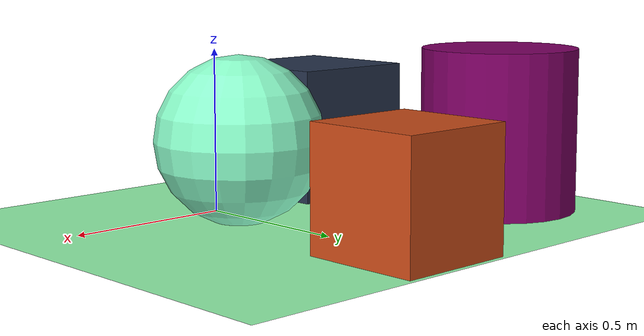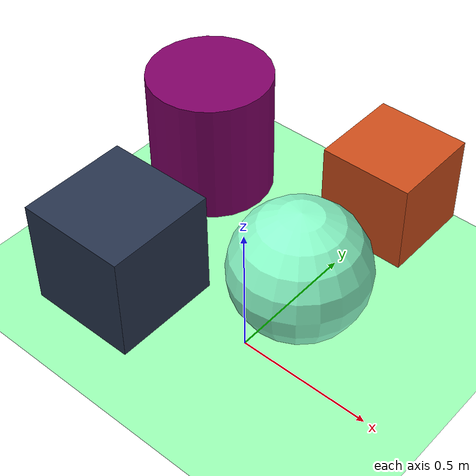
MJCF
<mujoco>
   <asset>
<texture type="skybox" builtin="gradient" rgb1="0.4 0.1 0.1" rgb2="0.6 0.4 0.7" width="256" height="256"/>
<texture name="gradient_0" builtin="gradient" rgb1="0.2 0.1 0.3" rgb2="0.1 0.3 0.3" width="200" height="200"/>
<texture name="gradient_1" builtin="gradient" rgb1="0.8 1.0 0.7" rgb2="0.3 1.0 0.9" width="200" height="200"/>
<texture name="flat_2" builtin="flat" rgb1="0.5 0.0 0.4" rgb2="0.5 0.0 0.4"  width="200" height="200"/>
<texture name="flat_3" builtin="flat" rgb1="0.8 0.3 0.1" rgb2="0.8 0.3 0.1"  width="200" height="200"/><material name="gradient_0_mat" reflectance="0" texture="gradient_0" texuniform="true"/>
<material name="gradient_1_mat" reflectance="0" texture="gradient_1" texuniform="true"/>
<material name="flat_2_mat" reflectance="0" texture="flat_2" texuniform="true"/>
<material name="flat_3_mat" reflectance="0" texture="flat_3" texuniform="true"/>
   </asset>

   <worldbody>
      <light diffuse=".9 .9 .9" pos="0 0 3" dir="0 0 -1"/>
     <geom type="plane" size="1 1 0.1" rgba="0.6 1.0 0.7 1"/>
<geom type="box" pos="-0.48 -0.09 0.21" size="0.21 0.21 0.21" material="gradient_0_mat" />
<geom type="sphere" pos="0.07 0.2 0.25" size="0.25 0.25 0.25" material="gradient_1_mat" />
<geom type="cylinder" pos="-0.66 0.57 0.25" size="0.24 0.25 0.25" material="flat_2_mat" />
<geom type="box" pos="0.01 0.81 0.18" size="0.18 0.18 0.18" material="flat_3_mat" /><camera euler="60 0 180" fovy="60" name="camera_a" pos="0 -1.5 1"></camera>   </worldbody>
</mujoco>
